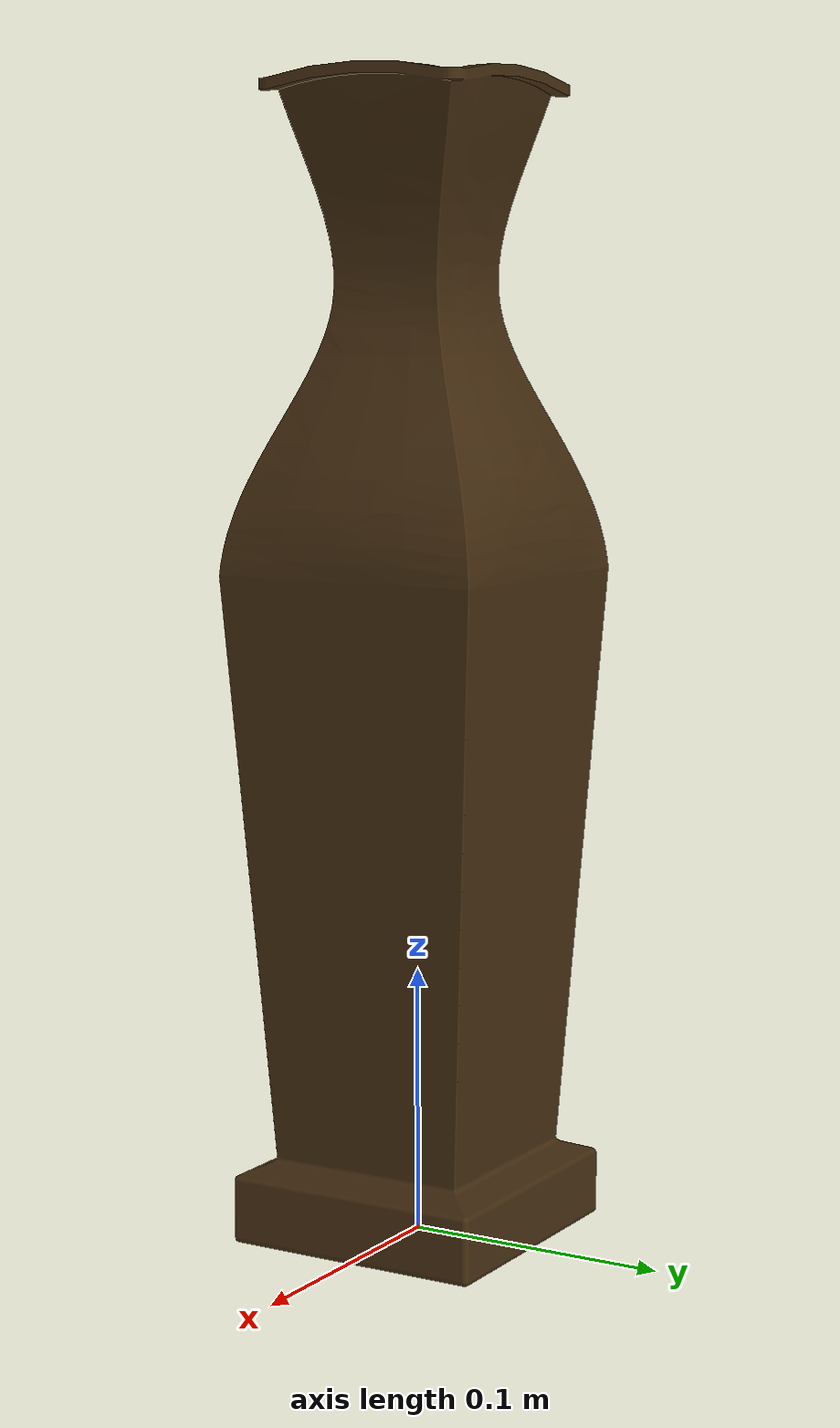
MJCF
<mujoco model="vase">
	<compiler meshdir="assets" texturedir="assets" />
    <asset>
        <mesh name="vase_mesh" file="vase.stl" />
	<texture name="texgeom" type="cube" builtin="flat" mark="cross" width="128" height="128"
		 rgb1="0.6 0.6 0.6" rgb2="0.6 0.6 0.6" markrgb="1 1 1"/>
	<material name='object' texture="texgeom" texuniform="true" rgba=".4 .6 .9 1" />
    </asset>

    <default>
        <default class="collision">
            <geom condim="6" group="0" />
        </default>
        <default class="visual">
            <geom condim="6" group="1" conaffinity="0" contype="0" />
        </default>
    </default>

    <worldbody>
      <light mode="targetbodycom" target="base_link" directional="false" diffuse=".8 .8 .8" specular="0.3 0.3 0.3" pos="0 0 4.0" dir="0 0 -1" />
      <body name="base_link">
        <freejoint name="root" />
        <inertial pos="0 0 0" mass="1.3" fullinertia="0.00778838 0.00779604 0.00141641 -0.00000007 0.00000023 -0.00000018" />
        <geom class="collision" type="mesh" mesh="vase_mesh" rgba="0.266754 0.174546 0.0644028 1" />
        <geom class="visual" type="mesh" mesh="vase_mesh" material="object" />
      </body>
    </worldbody>
</mujoco>
